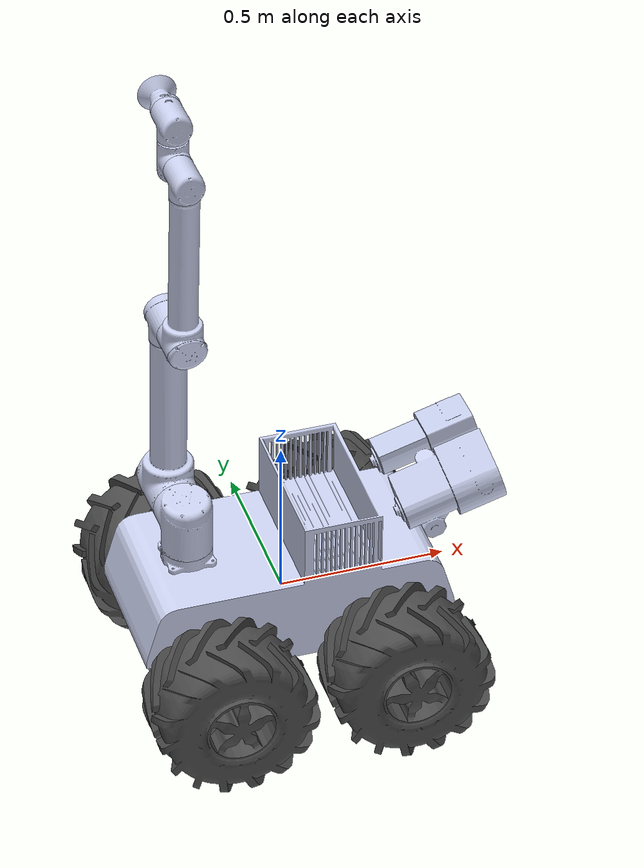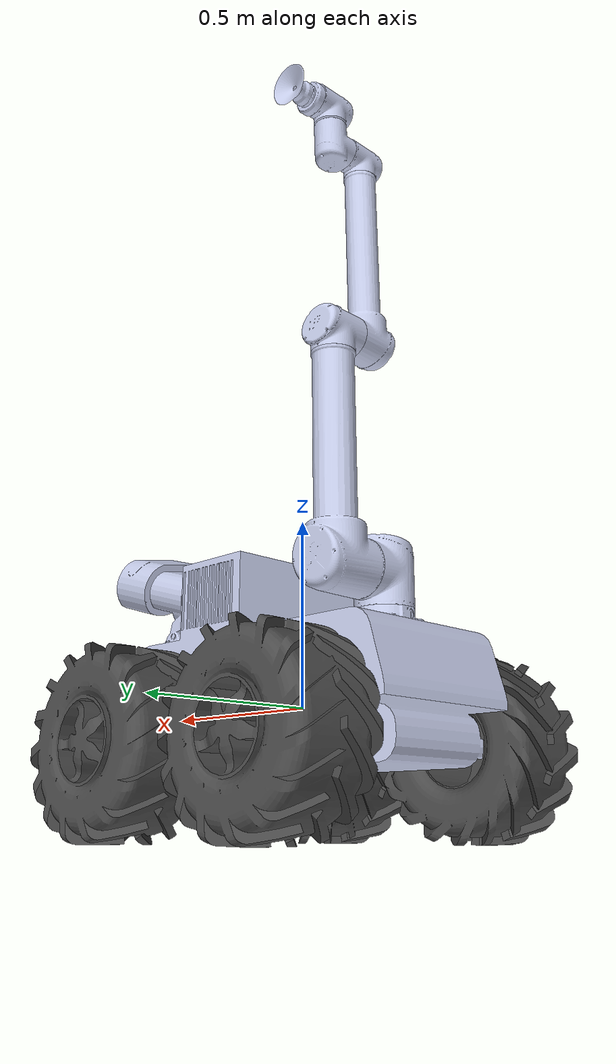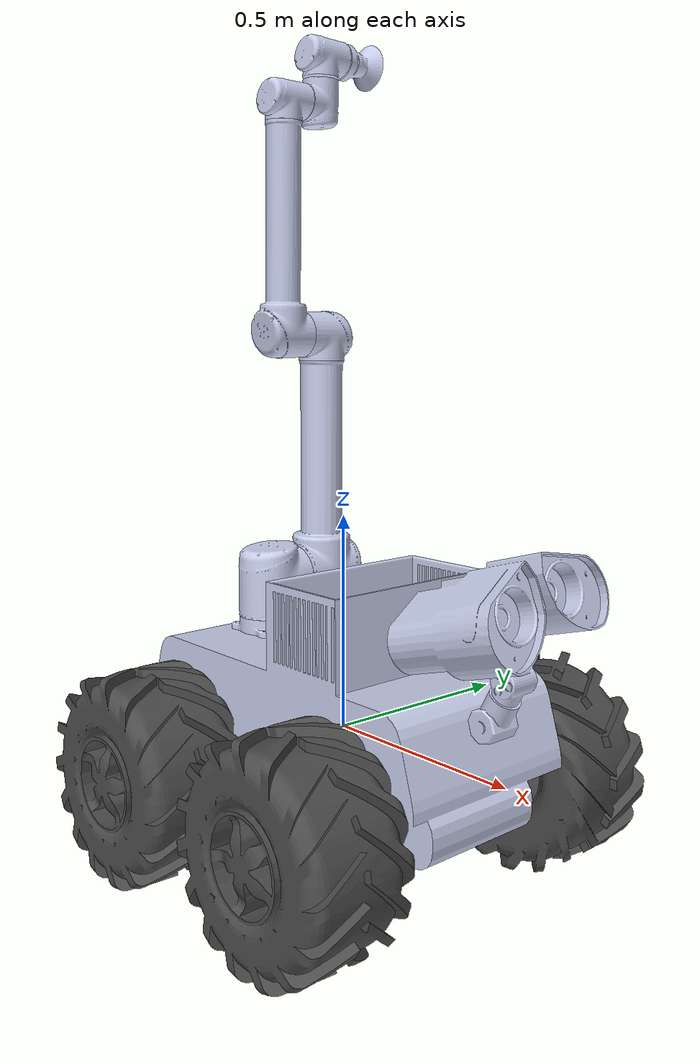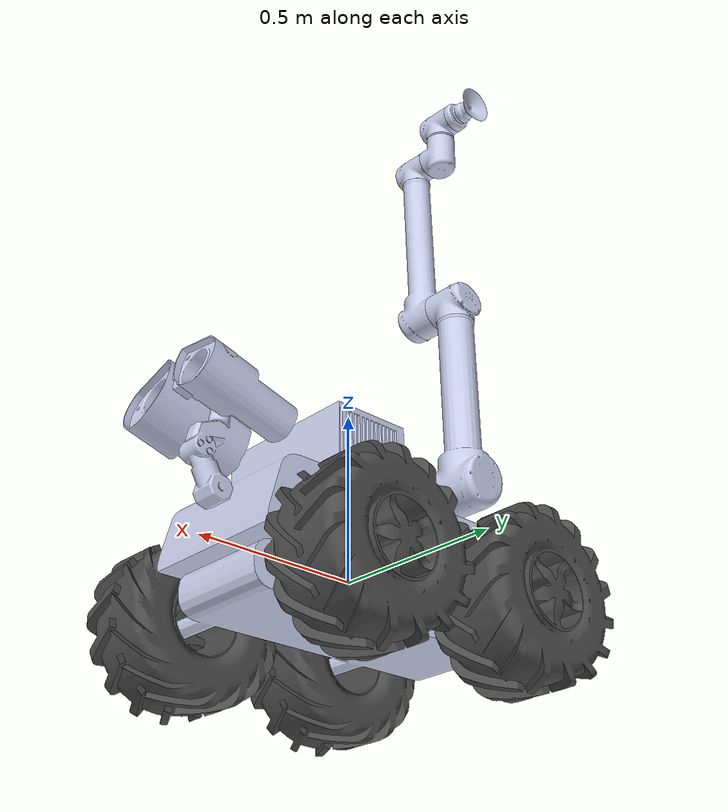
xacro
<?xml version="1.0" ?>
<robot
  name="roboharvest" xmlns:xacro="http://ros.org/wiki/xacro">
  <xacro:macro name="base_link">
      <visual>
      <material>
          <ambient>192 192 192 1</ambient>
          <diffuse>192 192 192 1</diffuse>
          <specular>0.1 0.1 0.1 1</specular>
          <emissive>0 0 0 0</emissive>
      </material>
      </visual>
  </xacro:macro>

  <xacro:macro name="front_right">
      <visual>
      <material>
          <ambient>75 80 70 1</ambient>
          <diffuse>75 80 70 1</diffuse>
          <specular>0.1 0.1 0.1 1</specular>
          <emissive>0 0 0 0</emissive>
      </material>
      </visual>
  </xacro:macro>

  <xacro:macro name="front_left">
      <visual>
      <material>
          <ambient>75 80 70 1</ambient>
          <diffuse>75 80 70 1</diffuse>
          <specular>0.1 0.1 0.1 1</specular>
          <emissive>0 0 0 0</emissive>
      </material>
      </visual>
  </xacro:macro>

  <xacro:macro name="rear_left">
      <visual>
      <material>
          <ambient>75 80 70 1</ambient>
          <diffuse>75 80 70 1</diffuse>
          <specular>0.1 0.1 0.1 1</specular>
          <emissive>0 0 0 0</emissive>
      </material>
      </visual>
  </xacro:macro>

  <xacro:macro name="rear_right">
      <visual>
      <material>
          <ambient>75 80 70 1</ambient>
          <diffuse>75 80 70 1</diffuse>
          <specular>0.1 0.1 0.1 1</specular>
          <emissive>0 0 0 0</emissive>
      </material>
      </visual>
  </xacro:macro>

  <xacro:macro name="walle_head">
      <visual>
      <material>
          <ambient>169 169 169 1</ambient>
          <diffuse>169 169 169 1</diffuse>
          <specular>0.1 0.1 0.1 1</specular>
          <emissive>0 0 0 0</emissive>
      </material>
      </visual>
  </xacro:macro>

  <link
    name="base_link">
    <inertial>
      <origin
        xyz="-0.000388315155439126 -0.000246415116432942 0.031353898640965"
        rpy="0 0 0" />
      <mass
        value="121.617841669888" />
      <inertia
        ixx="2.34302868736616"
        ixy="0.00879017006194074"
        ixz="-0.0428506040334107"
        iyy="8.25093215351618"
        iyz="-0.0116556489164161"
        izz="9.73837072519835" />
    </inertial>
    <visual>
      <origin
        xyz="0 0 0"
        rpy="0 0 0" />
      <geometry>
        <mesh
          filename="package://roboharvest/meshes/base.STL" />
      </geometry>
      <material
        name="">
        <color
          rgba="0.792156862745098 0.819607843137255 0.933333333333333 1" />
      </material>
    </visual>
    <collision>
      <origin
        xyz="0 0 0"
        rpy="0 0 0" />
      <geometry>
        <mesh
          filename="package://roboharvest/meshes/base.STL" />
      </geometry>
    </collision>
  </link>

  <!-- Base Footprint Link-->

  <joint name = "base_footprint_j" type = "fixed">
    <origin xyz = "0 0 0" rpy = "0 0 0"/>
    <parent link = "base_footprint"/>
    <child link = "base_link"/>
  </joint>

  <link name= "base_footprint">
  </link>

  <link
    name="front_right">
    <inertial>
      <origin
        xyz="-6.78717970714615E-10 1.09086044641771E-08 0.134444489467587"
        rpy="0 0 0" />
      <mass
        value="30.6884680089216" />
      <inertia
        ixx="0.595815452910559"
        ixy="-2.25204956072478E-08"
        ixz="-1.53377796531171E-09"
        iyy="0.595815644901867"
        iyz="-4.56210336938212E-08"
        izz="0.910300957186937" />
    </inertial>
    <visual>
      <origin
        xyz="0 0 0"
        rpy="0 0 0" />
      <geometry>
        <mesh
          filename="package://roboharvest/meshes/front_right.STL" />
      </geometry>
      <material
        name="">
        <color
          rgba="0.298039215686275 0.298039215686275 0.298039215686275 1" />
      </material>
    </visual>
    <collision>
      <origin
        xyz="0 0 0"
        rpy="0 0 0" />
      <geometry>
        <mesh
          filename="package://roboharvest/meshes/front_right.STL" />
      </geometry>
    </collision>
  </link>
  <joint
    name="front_right_j"
    type="continuous">
    <origin
      xyz="0.266042687798557 -0.238761470703757 -0.0952502670364748"
      rpy="1.57942123407871 -0.419602280003633 -0.00494458865107535" />
    <parent
      link="base_link" />
    <child
      link="front_right" />
    <axis
      xyz="0 0 1" />
  </joint>
  <link
    name="front_left">
    <inertial>
      <origin
        xyz="-4.33936553356773E-10 1.00053629409347E-08 0.133938019458945"
        rpy="0 0 0" />
      <mass
        value="30.6884681324061" />
      <inertia
        ixx="0.595815444469247"
        ixy="-2.4830059175418E-08"
        ixz="-2.74294234179316E-09"
        iyy="0.595815641015375"
        iyz="-4.57405292049635E-08"
        izz="0.910300946674862" />
    </inertial>
    <visual>
      <origin
        xyz="0 0 0"
        rpy="0 0 0" />
      <geometry>
        <mesh
          filename="package://roboharvest/meshes/front_left.STL" />
      </geometry>
      <material
        name="">
        <color
          rgba="0.298039215686275 0.298039215686275 0.298039215686275 1" />
      </material>
    </visual>
    <collision>
      <origin
        xyz="0 0 0"
        rpy="0 0 0" />
      <geometry>
        <mesh
          filename="package://roboharvest/meshes/front_left.STL" />
      </geometry>
    </collision>
  </link>
  <joint
    name="front_left_j"
    type="continuous">
    <origin
      xyz="0.266727643783791 0.23997653699215 -0.091479314618849"
      rpy="1.56237155647839 -0.362690906963914 -3.14003430832851" />
    <parent
      link="base_link" />
    <child
      link="front_left" />
    <axis
      xyz="0 0 1" />
  </joint>
  <link
    name="rear_left">
    <inertial>
      <origin
        xyz="-1.48962842061451E-10 1.08224411099478E-08 0.134041599980716"
        rpy="0 0 0" />
      <mass
        value="30.6884680232696" />
      <inertia
        ixx="0.59581545217311"
        ixy="-2.181218672348E-08"
        ixz="-4.16910482699262E-10"
        iyy="0.595815645336111"
        iyz="-4.60307556486442E-08"
        izz="0.910300957128926" />
    </inertial>
    <visual>
      <origin
        xyz="0 0 0"
        rpy="0 0 0" />
      <geometry>
        <mesh
          filename="package://roboharvest/meshes/rear_left.STL" />
      </geometry>
      <material
        name="">
        <color
          rgba="0.298039215686275 0.298039215686275 0.298039215686275 1" />
      </material>
    </visual>
    <collision>
      <origin
        xyz="0 0 0"
        rpy="0 0 0" />
      <geometry>
        <mesh
          filename="package://roboharvest/meshes/rear_left.STL" />
      </geometry>
    </collision>
  </link>
  <joint
    name="rear_left_j"
    type="continuous">
    <origin
      xyz="-0.266668894690048 0.240621830976103 -0.0896662871121348"
      rpy="-1.55052524383001 -1.17169510288349 -0.0201091297878387" />
    <parent
      link="base_link" />
    <child
      link="rear_left" />
    <axis
      xyz="0 0 1" />
  </joint>
  <link
    name="rear_right">
    <inertial>
      <origin
        xyz="-1.63488250715105E-10 1.14451541022298E-08 0.134621956474277"
        rpy="0 0 0" />
      <mass
        value="30.6884678376211" />
      <inertia
        ixx="0.595815574018795"
        ixy="-4.15877943749088E-08"
        ixz="8.4042869315324E-09"
        iyy="0.595815669332093"
        iyz="-5.67261778283874E-09"
        izz="0.910301056514685" />
    </inertial>
    <visual>
      <origin
        xyz="0 0 0"
        rpy="0 0 0" />
      <geometry>
        <mesh
          filename="package://roboharvest/meshes/rear_right.STL" />
      </geometry>
      <material
        name="">
        <color
          rgba="0.298039215686275 0.298039215686275 0.298039215686275 1" />
      </material>
    </visual>
    <collision>
      <origin
        xyz="0 0 0"
        rpy="0 0 0" />
      <geometry>
        <mesh
          filename="package://roboharvest/meshes/rear_right.STL" />
      </geometry>
    </collision>
  </link>
  <joint
    name="rear_right_j"
    type="continuous">
    <origin
      xyz="-0.267353448578213 -0.237835138005729 -0.0934350258270648"
      rpy="-1.58135415755208 -0.72867400329929 -3.13599300214289" />
    <parent
      link="base_link" />
    <child
      link="rear_right" />
    <axis
      xyz="0 0 1" />
  </joint>
  <link
    name="walle_head">
    <inertial>
      <origin
        xyz="-0.146353607008769 0.00242629035045308 -0.0700164000013464"
        rpy="0 0 0" />
      <mass
        value="11.0701333132767" />
      <inertia
        ixx="0.0335582572048281"
        ixy="-1.44949890085259E-05"
        ixz="0.000614379929060613"
        iyy="0.0317868846274005"
        iyz="-0.000116447848217514"
        izz="0.0326509650523524" />
    </inertial>
    <visual>
      <origin
        xyz="0 0 0"
        rpy="0 0 0" />
      <geometry>
        <mesh
          filename="package://roboharvest/meshes/walle_head.STL" />
      </geometry>
      <material
        name="">
        <color
          rgba="0.792156862745098 0.819607843137255 0.933333333333333 1" />
      </material>
    </visual>
    <collision>
      <origin
        xyz="0 0 0"
        rpy="0 0 0" />
      <geometry>
        <mesh
          filename="package://roboharvest/meshes/walle_head.STL" />
      </geometry>
    </collision>
  </link>
  <joint
    name="walle_head_j"
    type="fixed">
    <origin
      xyz="0.619759999999999 -0.0121736325383651 0.413108526723272"
      rpy="0 0 0" />
    <parent
      link="base_link" />
    <child
      link="walle_head" />
    <axis
      xyz="0 0 0" />
  </joint>
  <link
    name="ur10_base">
    <inertial>
      <origin
        xyz="-0.00287681901700804 -0.000162361622974369 0.0183343080758504"
        rpy="0 0 0" />
      <mass
        value="0.706324319593749" />
      <inertia
        ixx="0.00114585793061116"
        ixy="-6.21874343280215E-08"
        ixz="3.53119557315341E-06"
        iyy="0.00115563795040409"
        iyz="-7.75034751904608E-06"
        izz="0.0021288958389946" />
    </inertial>
    <visual>
      <origin
        xyz="0 0 0"
        rpy="0 0 0" />
      <geometry>
        <mesh
          filename="package://roboharvest/meshes/ur10.STL" />
      </geometry>
      <material
        name="">
        <color
          rgba="0.792156862745098 0.819607843137255 0.933333333333333 1" />
      </material>
    </visual>
    <collision>
      <origin
        xyz="0 0 0"
        rpy="0 0 0" />
      <geometry>
        <mesh
          filename="package://roboharvest/meshes/ur10.STL" />
      </geometry>
    </collision>
  </link>
  <joint
    name="ur10_j"
    type="fixed">
    <origin
      xyz="-0.28323 -0.0010007 0.18041"
      rpy="0 0 0" />
    <parent
      link="base_link" />
    <child
      link="ur10_base" />
    <axis
      xyz="0 0 0" />
  </joint>
  <link
    name="link_01">
    <inertial>
      <origin
        xyz="-0.000129690379843006 0.0106827402385295 0.092399531614093"
        rpy="0 0 0" />
      <mass
        value="3.07353619369966" />
      <inertia
        ixx="0.0114767843229334"
        ixy="1.56442886936178E-05"
        ixz="1.58867572926185E-05"
        iyy="0.0107305808171032"
        iyz="-0.000853542692507938"
        izz="0.0101061259092838" />
    </inertial>
    <visual>
      <origin
        xyz="0 0 0"
        rpy="0 0 0" />
      <geometry>
        <mesh
          filename="package://roboharvest/meshes/01.STL" />
      </geometry>
      <material
        name="">
        <color
          rgba="0.792156862745098 0.819607843137255 0.933333333333333 1" />
      </material>
    </visual>
    <collision>
      <origin
        xyz="0 0 0"
        rpy="0 0 0" />
      <geometry>
        <mesh
          filename="package://roboharvest/meshes/01.STL" />
      </geometry>
    </collision>
  </link>
  <joint
    name="joint_01"
    type="revolute">
    <origin
      xyz="-0.00254 0 0.024064"
      rpy="0 0 0" />
    <parent
      link="ur10_base" />
    <child
      link="link_01" />
    <axis
      xyz="-0.0033894 0.0078814 -0.99996" />
    <limit
      lower="-3.14"
      upper="1.50"
      effort="1"
      velocity="0" />
  </joint>
  <link
    name="link_12">
    <inertial>
      <origin
        xyz="-0.00403933793485417 -0.184579089767708 0.168692913523683"
        rpy="0 0 0" />
      <mass
        value="7.37860776949408" />
      <inertia
        ixx="0.0936189581878466"
        ixy="0.00102560506293547"
        ixz="3.05806369528424E-05"
        iyy="0.0172122737488374"
        iyz="0.000286423456910835"
        izz="0.0922852714753548" />
    </inertial>
    <visual>
      <origin
        xyz="0 0 0"
        rpy="0 0 0" />
      <geometry>
        <mesh
          filename="package://roboharvest/meshes/12.STL" />
      </geometry>
      <material
        name="">
        <color
          rgba="0.792156862745098 0.819607843137255 0.933333333333333 1" />
      </material>
    </visual>
    <collision>
      <origin
        xyz="0 0 0"
        rpy="0 0 0" />
      <geometry>
        <mesh
          filename="package://roboharvest/meshes/12.STL" />
      </geometry>
    </collision>
  </link>
  <joint
    name="joint_12"
    type="revolute">
    <origin
      xyz="0.00253999999999999 0 0.108016051516602"
      rpy="-1.5707963267949 0 0" />
    <parent
      link="link_01" />
    <child
      link="link_12" />
    <axis
      xyz="0.0248821256625927 0.00796335729419362 -0.999658674129883" />
    <limit
      lower="-1.7"
      upper="1.7"
      effort="1"
      velocity="0" />
  </joint>
  <link
    name="link_23">
    <inertial>
      <origin
        xyz="0.00695605013099798 -0.000745910741484057 -0.119252589272163"
        rpy="0 0 0" />
      <mass
        value="1.33383777518494" />
      <inertia
        ixx="0.00271427312195811"
        ixy="1.01764484904809E-05"
        ixz="0.000268693822751871"
        iyy="0.0028917307581789"
        iyz="-1.36815834817179E-05"
        izz="0.0026372699616753" />
    </inertial>
    <visual>
      <origin
        xyz="0 0 0"
        rpy="0 0 0" />
      <geometry>
        <mesh
          filename="package://roboharvest/meshes/23.STL" />
      </geometry>
      <material
        name="">
        <color
          rgba="0.792156862745098 0.819607843137255 0.933333333333333 1" />
      </material>
    </visual>
    <collision>
      <origin
        xyz="0 0 0"
        rpy="0 0 0" />
      <geometry>
        <mesh
          filename="package://roboharvest/meshes/23.STL" />
      </geometry>
    </collision>
  </link>
  <joint
    name="joint_23"
    type="fixed">
    <origin
      xyz="0.00253999999999999 -0.606993948483398 0.0406399999999979"
      rpy="3.14159265358979 0 1.5707963267949" />
    <parent
      link="link_12" />
    <child
      link="link_23" />
    <axis
      xyz="0 0 0" />
  </joint>
  <link
    name="link_34">
    <inertial>
      <origin
        xyz="-0.201916853829144 0.00698682516348603 -0.00239486917908178"
        rpy="0 0 0" />
      <mass
        value="3.92494771785396" />
      <inertia
        ixx="0.00495218360063907"
        ixy="0.00100393089810137"
        ixz="0.000558357470982016"
        iyy="0.0505755294525949"
        iyz="-1.35101986831236E-05"
        izz="0.050534064973198" />
    </inertial>
    <visual>
      <origin
        xyz="0 0 0"
        rpy="0 0 0" />
      <geometry>
        <mesh
          filename="package://roboharvest/meshes/34.STL" />
      </geometry>
      <material
        name="">
        <color
          rgba="0.792156862745098 0.819607843137255 0.933333333333333 1" />
      </material>
    </visual>
    <collision>
      <origin
        xyz="0 0 0"
        rpy="0 0 0" />
      <geometry>
        <mesh
          filename="package://roboharvest/meshes/34.STL" />
      </geometry>
    </collision>
  </link>
  <joint
    name="joint_34"
    type="revolute">
    <origin
      xyz="0 0 0"
      rpy="0 0 0" />
    <parent
      link="link_23" />
    <child
      link="link_34" />
    <axis
      xyz="-0.0080008 -0.027654 -0.99959" />
    <limit
      lower="-3.14"
      upper="3.14"
      effort="1"
      velocity="0" />
  </joint>
  <link
    name="link_45">
    <inertial>
      <origin
        xyz="0.000227496972523833 -0.00816170352795731 -0.00888627413150182"
        rpy="0 0 0" />
      <mass
        value="0.728497721623388" />
      <inertia
        ixx="0.00111503918992298"
        ixy="-6.60987686743948E-07"
        ixz="1.69203589509212E-06"
        iyy="0.0010309191620223"
        iyz="9.07933524385884E-05"
        izz="0.000883756909419874" />
    </inertial>
    <visual>
      <origin
        xyz="0 0 0"
        rpy="0 0 0" />
      <geometry>
        <mesh
          filename="package://roboharvest/meshes/45.STL" />
      </geometry>
      <material
        name="">
        <color
          rgba="0.792156862745098 0.819607843137255 0.933333333333333 1" />
      </material>
    </visual>
    <collision>
      <origin
        xyz="0 0 0"
        rpy="0 0 0" />
      <geometry>
        <mesh
          filename="package://roboharvest/meshes/45.STL" />
      </geometry>
    </collision>
  </link>
  <joint
    name="joint_45"
    type="fixed">
    <origin
      xyz="-0.57404 0.015 0.0015343"
      rpy="0.0073998 0.027825 1.5491" />
    <parent
      link="link_34" />
    <child
      link="link_45" />
    <axis
      xyz="0 1 0" />
    <limit
      lower="-3.14"
      upper="3.14"
      effort="1"
      velocity="0" />
  </joint>
  <link
    name="link_56">
    <inertial>
      <origin
        xyz="-0.00201713615320021 -0.00942813125932965 0.010016991300194"
        rpy="0 0 0" />
      <mass
        value="0.728501261487563" />
      <inertia
        ixx="0.00111501642067699"
        ixy="1.39114164164508E-06"
        ixz="1.01103212355247E-06"
        iyy="0.00103237987321371"
        iyz="-8.96280889683871E-05"
        izz="0.000882340754292452" />
    </inertial>
    <visual>
      <origin
        xyz="0 0 0"
        rpy="0 0 0" />
      <geometry>
        <mesh
          filename="package://roboharvest/meshes/56.STL" />
      </geometry>
      <material
        name="">
        <color
          rgba="0.792156862745098 0.819607843137255 0.933333333333333 1" />
      </material>
    </visual>
    <collision>
      <origin
        xyz="0 0 0"
        rpy="0 0 0" />
      <geometry>
        <mesh
          filename="package://roboharvest/meshes/56.STL" />
      </geometry>
    </collision>
  </link>
  <joint
    name="joint_56"
    type="revolute">
    <origin
      xyz="0.00324349270270768 -0.000862330903033337 -0.116532714128121"
      rpy="-1.57880027579945 -0.0276576794108809 0.0218837926045398" />
    <parent
      link="link_45" />
    <child
      link="link_56" />
    <axis
      xyz="-0.0206635875345738 0.999755673954468 0.00784911116302056" />
    <limit
      lower="-3.14"
      upper="3.14"
      effort="1"
      velocity="0" />
  </joint>
  <link
    name="link_67">
    <inertial>
      <origin
        xyz="0.00105722721767587 0.00549451922945901 0.0131575855609647"
        rpy="0 0 0" />
      <mass
        value="0.726843839364982" />
      <inertia
        ixx="0.00110966422273283"
        ixy="-2.04353929912299E-06"
        ixz="5.64573062238837E-06"
        iyy="0.00102838845303955"
        iyz="8.98626113741334E-05"
        izz="0.000881097341652695" />
    </inertial>
    <visual>
      <origin
        xyz="0 0 0"
        rpy="0 0 0" />
      <geometry>
        <mesh
          filename="package://roboharvest/meshes/67.STL" />
      </geometry>
      <material
        name="">
        <color
          rgba="0.792156862745098 0.819607843137255 0.933333333333333 1" />
      </material>
    </visual>
    <collision>
      <origin
        xyz="0 0 0"
        rpy="0 0 0" />
      <geometry>
        <mesh
          filename="package://roboharvest/meshes/67.STL" />
      </geometry>
    </collision>
  </link>
  <joint
    name="joint_67"
    type="revolute">
    <origin
      xyz="0 -0.0029883922973869 0.11684"
      rpy="-1.5707963267949 0 0" />
    <parent
      link="link_56" />
    <child
      link="link_67" />
    <axis
      xyz="0.0141986851026597 -0.999683377991151 0.0207735675693348" />
    <limit
      lower="-3.14"
      upper="3.14"
      effort="1"
      velocity="0" />
  </joint>
  <link
    name="link_78">
    <inertial>
      <origin
        xyz="-0.00158153117974213 -1.7534827556398E-05 0.0373810901103749"
        rpy="0 0 0" />
      <mass
        value="0.0337062568748666" />
      <inertia
        ixx="0.000219372061939013"
        ixy="4.06841877511969E-07"
        ixz="-1.42551879432975E-06"
        iyy="0.000213557408275703"
        iyz="-5.67193955052329E-07"
        izz="0.000290995458234039" />
    </inertial>
    <visual>
      <origin
        xyz="0 0 0"
        rpy="0 0 0" />
      <geometry>
        <mesh
          filename="package://roboharvest/meshes/78.STL" />
      </geometry>
      <material
        name="">
        <color
          rgba="0.792156862745098 0.819607843137255 0.933333333333333 1" />
      </material>
    </visual>
    <collision>
      <origin
        xyz="0 0 0"
        rpy="0 0 0" />
      <geometry>
        <mesh
          filename="package://roboharvest/meshes/78.STL" />
      </geometry>
    </collision>
  </link>
  <joint
    name="joint_78"
    type="revolute">
    <origin
      xyz="0 0 0.0635"
      rpy="0 0 0" />
    <parent
      link="link_67" />
    <child
      link="link_78" />
    <axis
      xyz="-0.026512 -0.0078721 0.99962" />
    <limit
      lower="-3.14"
      upper="3.14"
      effort="1"
      velocity="0" />
  </joint>

    <gazebo reference="base_link">
        <xacro:base_link/>
    </gazebo>
    <gazebo reference="front_right">
        <xacro:front_right/>
    </gazebo>
    <gazebo reference="front_left">
        <xacro:front_left/>
    </gazebo>
    <gazebo reference="rear_left">
        <xacro:rear_left/>
    </gazebo>
    <gazebo reference="rear_right">
        <xacro:rear_right/>
    </gazebo>
    <gazebo reference="walle_head">
        <xacro:walle_head/>
    </gazebo>

 <ros2_control name="GazeboSystem" type="system">
   <hardware>
     <plugin>gazebo_ros2_control/GazeboSystem</plugin>
   </hardware>

   <!-- # Velocity Controllers -->

   <joint name="front_right_j">
      <command_interface name="velocity">
          <param name="min">-1000.0</param>
          <param name="max">1000.0</param>
      </command_interface>
      <state_interface name="position"/>
      <state_interface name="velocity"/>
   </joint>
   <joint name="front_left_j">
      <command_interface name="velocity">
          <param name="min">-1000.0</param>
          <param name="max">1000.0</param>
      </command_interface>
      <state_interface name="position"/>
      <state_interface name="velocity"/>
   </joint>
   <joint name="rear_right_j">
      <command_interface name="velocity">
          <param name="min">-1000.0</param>
          <param name="max">1000.0</param>
      </command_interface>
      <state_interface name="position"/>
      <state_interface name="velocity"/>
   </joint>
   <joint name="rear_left_j">
      <command_interface name="velocity">
          <param name="min">-1000.0</param>
          <param name="max">1000.0</param>
      </command_interface>
      <state_interface name="position"/>
      <state_interface name="velocity"/>
   </joint>
   <joint name="joint_01">
      <command_interface name="velocity">
          <param name="min">-1000.0</param>
          <param name="max">1000.0</param>
      </command_interface>
      <state_interface name="position"/>
      <state_interface name="velocity"/>
   </joint>
   <joint name="joint_12">
      <command_interface name="velocity">
          <param name="min">-1000.0</param>
          <param name="max">1000.0</param>
      </command_interface>
      <state_interface name="position"/>
      <state_interface name="velocity"/>
   </joint>
   <joint name="joint_34">
      <command_interface name="velocity">
          <param name="min">-1000.0</param>z
          <param name="max">1000.0</param>
      </command_interface>
      <state_interface name="position"/>
      <state_interface name="velocity"/>
   </joint>
   <joint name="joint_56">
      <command_interface name="velocity">
          <param name="min">-1000.0</param>
          <param name="max">1000.0</param>
      </command_interface>
      <state_interface name="position"/>
      <state_interface name="velocity"/>
   </joint>
   <joint name="joint_67">
      <command_interface name="velocity">
          <param name="min">-1000.0</param>
          <param name="max">1000.0</param>
      </command_interface>
      <state_interface name="position"/>
      <state_interface name="velocity"/>
   </joint>
   <joint name="joint_78">
      <command_interface name="velocity">
          <param name="min">-1000.0</param>
          <param name="max">1000.0</param>
      </command_interface>
      <state_interface name="position"/>
      <state_interface name="velocity"/>
   </joint>

 <!-- Position Controller -->

    <joint name="joint_01">
        <command_interface name="position">
            <param name="min">-3.14</param>
            <param name="max">3.14</param>
        </command_interface>
        <state_interface name="position"/>
        <state_interface name="velocity"/>
    </joint>
    <joint name="joint_12">
        <command_interface name="position">
            <param name="min">-3.14</param>
            <param name="max">3.14</param>
        </command_interface>
        <state_interface name="position"/>
        <state_interface name="velocity"/>
    </joint>
    <joint name="joint_34">
        <command_interface name="position">
            <param name="min">-3.14</param>
            <param name="max">3.14</param>
        </command_interface>
        <state_interface name="position"/>
        <state_interface name="velocity"/>
    </joint>
    <joint name="joint_56">
        <command_interface name="position">
            <param name="min">-3.14</param>
            <param name="max">3.14</param>
        </command_interface>
        <state_interface name="position"/>
        <state_interface name="velocity"/>
    </joint>
    <joint name="joint_67">
        <command_interface name="position">
            <param name="min">-3.14</param>
            <param name="max">3.14</param>
        </command_interface>
        <state_interface name="position"/>
        <state_interface name="velocity"/>
    </joint>
    <joint name="joint_78">
        <command_interface name="position">
            <param name="min">-3.14</param>
            <param name="max">3.14</param>
        </command_interface>
        <state_interface name="position"/>
        <state_interface name="velocity"/>
    </joint>

  </ros2_control>

  <gazebo>
    <plugin filename="libgazebo_ros2_control.so" name="gazebo_ros2_control">
        <parameters>$(find roboharvest)/config/control.yaml</parameters>
    </plugin>
  </gazebo>

  <!-- Odom -->

  <!-- IMU -->

  <!-- # diff_drive -->
  <gazebo>
      <plugin name='skid_steer_drive' filename='libgazebo_ros_diff_drive.so'>
        <ros>
          <!-- Set namespace -->
          <namespace>/</namespace>
          <!-- Remap default topics -->
          <remapping>odom:=wheel_odom</remapping>
        </ros>
        <!-- Update rate -->
        <update_rate>50</update_rate>
        <!-- Number of wheel pairs -->
        <num_wheel_pairs>2</num_wheel_pairs>
        <!-- wheels0 -->
        <left_joint>rear_left_j</left_joint>
        <right_joint>rear_right_j</right_joint>
        <!-- wheels1-->
        <left_joint>front_left_j</left_joint>
        <right_joint>front_right_j</right_joint>
        <!-- kinematics -->
        <wheel_separation>0.8382</wheel_separation>
        <wheel_separation>0.8382</wheel_separation>
        <wheel_diameter>0.25224</wheel_diameter>
        <wheel_diameter>0.25224</wheel_diameter>
        <!-- limits -->
        <max_wheel_torque>20</max_wheel_torque>
        <max_wheel_acceleration>1.0</max_wheel_acceleration>
        <!-- output -->
        <publish_odom>true</publish_odom>
        <publish_odom_tf>true</publish_odom_tf>
        <publish_wheel_tf>false</publish_wheel_tf>
        <odometry_frame>odom</odometry_frame>
        <robot_base_frame>base_footprint</robot_base_frame>

      </plugin>
  </gazebo>

  <!-- Lidar -->
  <gazebo reference="walle_head">
  <sensor name="lidar" type="ray">
    <pose>0.0 0.0 0.0 -90 0 -90</pose>
    <always_on>true</always_on>
    <visualize>true</visualize>
    <update_rate>5</update_rate>
    <ray>
      <scan>
        <horizontal>
          <samples>360</samples>
          <resolution>1.00000</resolution>
          <min_angle>0.000000</min_angle>
          <max_angle>6.280000</max_angle>
        </horizontal>
      </scan>
      <range>
        <min>0.120000</min>
        <max>3.5</max>
        <resolution>0.015000</resolution>
      </range>
      <noise>
        <type>gaussian</type>
        <mean>0.0</mean>
        <stddev>0.01</stddev>
      </noise>
    </ray>
    <plugin name="scan" filename="libgazebo_ros_ray_sensor.so">
      <ros>
        <remapping>~/out:=scan</remapping>
      </ros>
      <output_type>sensor_msgs/LaserScan</output_type>
      <frame_name>base_link</frame_name>
    </plugin>
  </sensor>
  </gazebo>

  <!-- Vaccum Gripper -->

 <!-- camera -->
  <gazebo reference="walle_head">
    <sensor type="camera" name="camera1">
      <pose> 0 0 1.5 0 0 0 </pose>
      <update_rate>30.0</update_rate>
      <camera name="head">
        <horizontal_fov>1.3962634</horizontal_fov>
        <image>
          <width>800</width>
          <height>800</height>
          <format>R8G8B8</format>
        </image>
        <clip>
          <near>0.02</near>
          <far>300</far>
        </clip>
        <noise>
          <type>gaussian</type>
          <mean>0.0</mean>
          <stddev>0.007</stddev>
        </noise>
      </camera>
      <plugin name="camera_controller" filename="libgazebo_ros_camera.so">
        <alwaysOn>true</alwaysOn>
        <updateRate>0.0</updateRate>
        <cameraName>rrbot/camera1</cameraName>
        <imageTopicName>image_raw</imageTopicName>
        <cameraInfoTopicName>camera_info</cameraInfoTopicName>
        <frameName>walle_head</frameName>
        <hackBaseline>0.07</hackBaseline>
        <distortionK1>0.0</distortionK1>
        <distortionK2>0.0</distortionK2>
        <distortionK3>0.0</distortionK3>
        <distortionT1>0.0</distortionT1>
        <distortionT2>0.0</distortionT2>
      </plugin>
    </sensor>
  </gazebo>

</robot>
